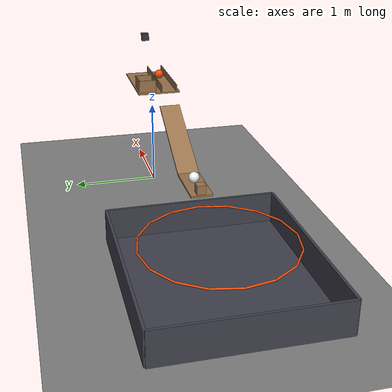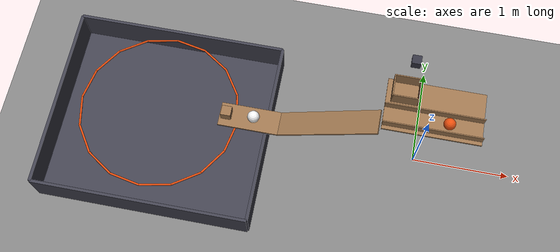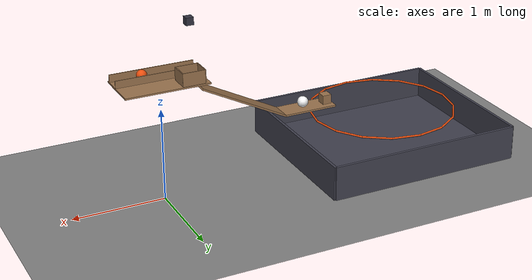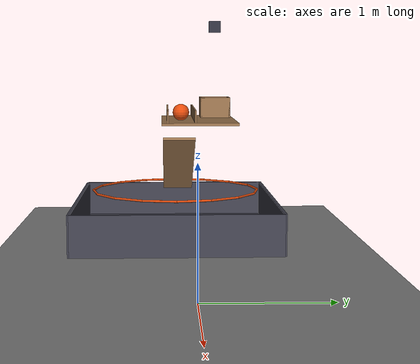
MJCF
<mujoco model="falling_weight_and_tipping_tray">
  <compiler angle="radian"/>
  <option timestep="0.002"/>
  <worldbody>
    <geom name="floor" type="plane" size="10 10 0.1" friction="0.8 0.005 0.002"/>
    <body name="tray" pos="0 0 1.3">
      <joint name="tray_hinge" type="hinge" pos="0 0 0" axis="0 1 0" limited="true" range="-0.349066 0" stiffness="4" springref="0" damping="3" armature="0.6"/>
      <geom name="tray" type="box" pos="0 0 0" size="0.45 0.25 0.009" mass="0.65" friction="0.6 0.001 0.0005" solref="0.01 1" rgba="0.6 0.45 0.3 1"/>
      <geom name="tray ball left rail" type="box" pos="0 -0.03 0.049" size="0.45 0.005 0.04" mass="0.02" solref="0.01 1" rgba="0.6 0.45 0.3 1"/>
      <geom name="tray ball right rail" type="box" pos="0 -0.21 0.049" size="0.45 0.005 0.04" mass="0.02" solref="0.01 1" rgba="0.6 0.45 0.3 1"/>
      <geom name="weight pocket near wall" type="box" pos="-0.4 0.13 0.079" size="0.005 0.105 0.07" mass="0.02" solref="0.01 1" rgba="0.6 0.45 0.3 1"/>
      <geom name="weight pocket far wall" type="box" pos="-0.16 0.13 0.079" size="0.005 0.105 0.07" mass="0.02" solref="0.01 1" rgba="0.6 0.45 0.3 1"/>
      <geom name="weight pocket left wall" type="box" pos="-0.28 0.23 0.079" size="0.125 0.005 0.07" mass="0.02" solref="0.01 1" rgba="0.6 0.45 0.3 1"/>
      <geom name="weight pocket right wall" type="box" pos="-0.28 0.03 0.079" size="0.125 0.005 0.07" mass="0.02" solref="0.01 1" rgba="0.6 0.45 0.3 1"/>
    </body>
    <body name="weight" pos="-0.28 0.13 1.949">
      <freejoint/>
      <geom name="weight" type="box" pos="0 0 0" size="0.04 0.04 0.04" mass="2" friction="0.8 0.01 0.002" solref="0.01 1" rgba="0.2 0.2 0.25 1"/>
    </body>
    <body name="ball1" pos="0.14 -0.12 1.364">
      <freejoint/>
      <geom name="ball1" type="sphere" pos="0 0 0" size="0.055" mass="0.6" condim="6" friction="0.6 0.001 0.0005" solref="0.01 1" rgba="0.9 0.3 0.05 1"/>
    </body>
    <body name="spill ramp">
      <geom name="spill ramp" type="box" pos="-0.93 -0.12 0.8925" size="0.528873 0.12 0.01" euler="0 2.66526 0" friction="0.6 0.001 0.0005" solref="0.01 1" rgba="0.6 0.45 0.3 1"/>
    </body>
    <body name="transfer deck">
      <geom name="transfer deck" type="box" pos="-1.7 -0.12 0.65" size="0.3 0.12 0.01" friction="0.3 0.001 0.0005" solref="0.01 1" rgba="0.6 0.45 0.3 1"/>
    </body>
    <body name="ball2" pos="-1.66 -0.12 0.72">
      <freejoint/>
      <geom name="ball2" type="sphere" pos="0 0 0" size="0.06" mass="0.4" condim="6" friction="0.5 0.001 0.0005" solref="0.01 1" rgba="0.95 0.95 0.95 1"/>
    </body>
    <body name="block" pos="-1.93 -0.12 0.71">
      <freejoint/>
      <geom name="block" type="box" pos="0 0 0" size="0.05 0.05 0.05" mass="0.08" friction="0.25 0.005 0.002" solref="0.01 1" rgba="0.6 0.45 0.3 1"/>
    </body>
    <body name="hoop">
      <geom name="hoop_00" type="capsule" size="0.01" fromto="-1.84 -0.12 0.45 -1.90166 0.189974 0.45" solref="0.01 1" rgba="0.9 0.3 0.05 1"/>
      <geom name="hoop_01" type="capsule" size="0.01" fromto="-1.90166 0.189974 0.45 -2.07724 0.452756 0.45" solref="0.01 1" rgba="0.9 0.3 0.05 1"/>
      <geom name="hoop_02" type="capsule" size="0.01" fromto="-2.07724 0.452756 0.45 -2.34003 0.628342 0.45" solref="0.01 1" rgba="0.9 0.3 0.05 1"/>
      <geom name="hoop_03" type="capsule" size="0.01" fromto="-2.34003 0.628342 0.45 -2.65 0.69 0.45" solref="0.01 1" rgba="0.9 0.3 0.05 1"/>
      <geom name="hoop_04" type="capsule" size="0.01" fromto="-2.65 0.69 0.45 -2.95997 0.628342 0.45" solref="0.01 1" rgba="0.9 0.3 0.05 1"/>
      <geom name="hoop_05" type="capsule" size="0.01" fromto="-2.95997 0.628342 0.45 -3.22276 0.452756 0.45" solref="0.01 1" rgba="0.9 0.3 0.05 1"/>
      <geom name="hoop_06" type="capsule" size="0.01" fromto="-3.22276 0.452756 0.45 -3.39834 0.189974 0.45" solref="0.01 1" rgba="0.9 0.3 0.05 1"/>
      <geom name="hoop_07" type="capsule" size="0.01" fromto="-3.39834 0.189974 0.45 -3.46 -0.12 0.45" solref="0.01 1" rgba="0.9 0.3 0.05 1"/>
      <geom name="hoop_08" type="capsule" size="0.01" fromto="-3.46 -0.12 0.45 -3.39834 -0.429974 0.45" solref="0.01 1" rgba="0.9 0.3 0.05 1"/>
      <geom name="hoop_09" type="capsule" size="0.01" fromto="-3.39834 -0.429974 0.45 -3.22276 -0.692756 0.45" solref="0.01 1" rgba="0.9 0.3 0.05 1"/>
      <geom name="hoop_10" type="capsule" size="0.01" fromto="-3.22276 -0.692756 0.45 -2.95997 -0.868342 0.45" solref="0.01 1" rgba="0.9 0.3 0.05 1"/>
      <geom name="hoop_11" type="capsule" size="0.01" fromto="-2.95997 -0.868342 0.45 -2.65 -0.93 0.45" solref="0.01 1" rgba="0.9 0.3 0.05 1"/>
      <geom name="hoop_12" type="capsule" size="0.01" fromto="-2.65 -0.93 0.45 -2.34003 -0.868342 0.45" solref="0.01 1" rgba="0.9 0.3 0.05 1"/>
      <geom name="hoop_13" type="capsule" size="0.01" fromto="-2.34003 -0.868342 0.45 -2.07724 -0.692756 0.45" solref="0.01 1" rgba="0.9 0.3 0.05 1"/>
      <geom name="hoop_14" type="capsule" size="0.01" fromto="-2.07724 -0.692756 0.45 -1.90166 -0.429974 0.45" solref="0.01 1" rgba="0.9 0.3 0.05 1"/>
      <geom name="hoop_15" type="capsule" size="0.01" fromto="-1.90166 -0.429974 0.45 -1.84 -0.12 0.45" solref="0.01 1" rgba="0.9 0.3 0.05 1"/>
    </body>
    <body name="bin">
      <geom name="bin_base" type="box" pos="-2.65 -0.12 0.015" size="1.1 0.95 0.015" friction="0.9 0.02 0.01" solref="0.01 1" rgba="0.25 0.25 0.3 1"/>
      <geom name="bin_near_wall" type="box" pos="-3.75 -0.12 0.19" size="0.015 0.95 0.19" friction="0.9 0.02 0.01" solref="0.01 1" rgba="0.25 0.25 0.3 1"/>
      <geom name="bin_far_wall" type="box" pos="-1.55 -0.12 0.19" size="0.015 0.95 0.19" friction="0.9 0.02 0.01" solref="0.01 1" rgba="0.25 0.25 0.3 1"/>
      <geom name="bin_left_wall" type="box" pos="-2.65 0.83 0.19" size="1.1 0.015 0.19" friction="0.9 0.02 0.01" solref="0.01 1" rgba="0.25 0.25 0.3 1"/>
      <geom name="bin_right_wall" type="box" pos="-2.65 -1.07 0.19" size="1.1 0.015 0.19" friction="0.9 0.02 0.01" solref="0.01 1" rgba="0.25 0.25 0.3 1"/>
    </body>
  </worldbody>
  <keyframe>
    <key name="start" qpos="0 -0.28 0.13 1.949 1 0 0 0 0.14 -0.12 1.364 1 0 0 0 -1.66 -0.12 0.72 1 0 0 0 -1.93 -0.12 0.71 1 0 0 0" qvel="0 0 0 0 0 0 0 0 0 0 0 0 0 0 0 0 0 0 0 0 0 0 0 0 0"/>
  </keyframe>
</mujoco>
